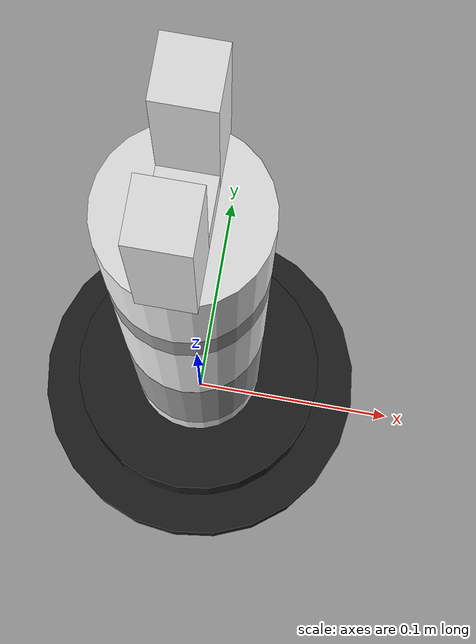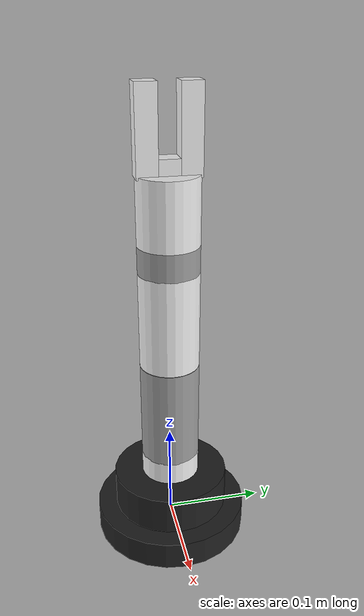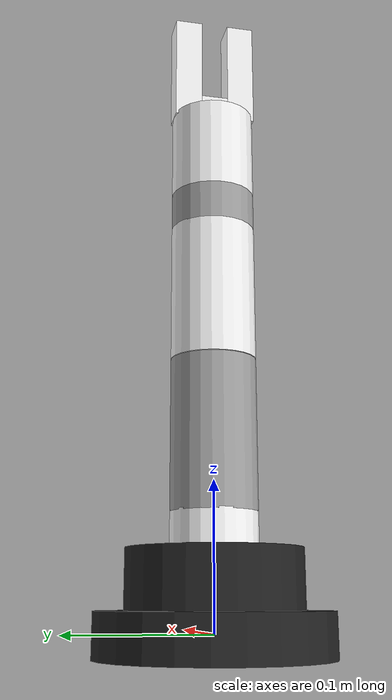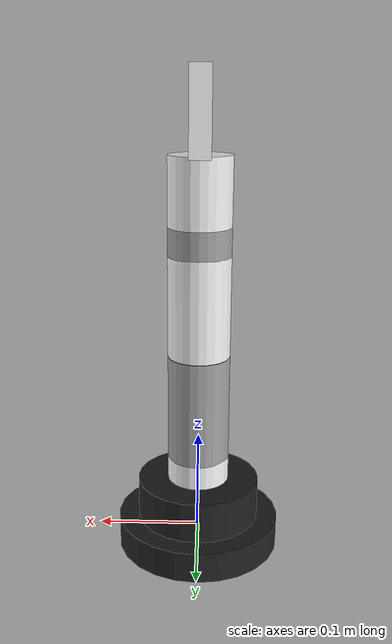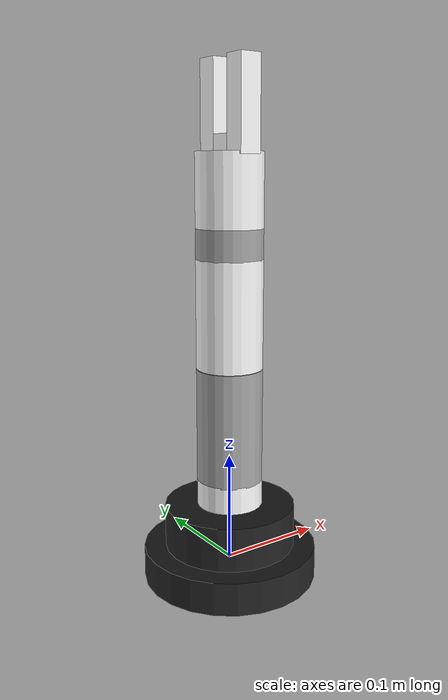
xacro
<?xml version="1.0"?>
<robot name="joyit" xmlns:xacro="http://www.ros.org/wiki/xacro">
    <xacro:include filename="$(find robot_manipulator_5dof)/urdf/links_joints.xacro"/>
    <xacro:include filename="$(find robot_manipulator_5dof)/urdf/robot_parameters.xacro"/>

<!-- *************************************bottom_link**********************************************-->
      <!-- Gripper roll link properties -->
      <property name="gripper_roll_width" value="0.04" />
      <property name="gripper_roll_len" value="0.02" />

      <!-- Left gripper -->
      <property name="left_gripper_len" value="0.02" />
      <property name="left_gripper_width" value="0.02" />
      <property name="left_gripper_height" value="0.08" />

      <!-- Right gripper -->
      <property name="right_gripper_len" value="0.02" />
      <property name="right_gripper_width" value="0.02" />
      <property name="right_gripper_height" value="0.08" />

      <!-- Right gripper -->
      <property name="grasp_frame_len" value="0.02" />
      <property name="grasp_frame_width" value="0.02" />
      <property name="grasp_frame_height" value="0.02" />

    <xacro:macro name="inertial_matrix" params="mass">
        <inertial>
            <mass value="${mass}" />
            <inertia ixx="1.0" ixy="0.0" ixz="0.0" iyy="0.5" iyz="0.0" izz="1.0" />
        </inertial>
    </xacro:macro>

    <!-- *************************************bottom_link********************************************-->
    <link name="dummy_link">
    </link>
    <joint name="dummy_joint" type="fixed">
        <parent link="dummy_link"/>
        <child link="${l000}"/>
    </joint>
    <m_link_cylinder name="${l000}"
        origin_rpy="0 0 0"
        origin_xyz="0 0 0"
        radius="0.08" length="0.03"
        mass= "2000"
        ixx ="0.0" ixy ="0.0" ixz="0.0"
        iyy ="0.0" iyz="0.0"
        izz ="0.0"
        color="black"/>

    <gazebo reference="${l000}">
        <material>Gazebo/Black</material>
    </gazebo>

    <joint name="${l000}__${l00}" type="fixed">
        <axis xyz="0 0 1"/>
        <origin xyz="0 0 0.015" rpy="0 0 0"/>
        <parent link="${l000}"/>
        <child link="${l00}"/>
    </joint>

<!-- *************************************base_link*********************************************-->
    <m_link_cylinder name="${l00}"
        origin_rpy="0 0 0"
        origin_xyz="0 0 0.015"
        length="0.05" radius="0.06"
        mass= "2000"
        ixx ="0.0" ixy ="0.0" ixz="0.0"
        iyy ="0.0" iyz="0.0"
        izz ="0.0"
        color="white"/>

    <gazebo reference="${l00}">
        <material>Gazebo/Black</material>
    </gazebo>

    <m_joint name="${l00}__${l01}"
        type="revolute" axis_xyz="0 0 1"
        limit_e="1000.0" limit_l="0" limit_u="3.14" limit_v="0.5"
        origin_rpy="0 0 0" origin_xyz="0 0 0.028"
        parent="${l00}"
        child="${l01}"/>

<!-- *************************************link_01*********************************************-->
    <m_link_cylinder name="${l01}"
        origin_rpy="0 0 0"
        origin_xyz="0 0 0.02"
        length="0.033" radius="0.03"
        mass= "1"
        ixx ="1.0" ixy ="1.0" ixz="0.0"
        iyy ="0.5" iyz="0.0"
        izz ="1.0"
        color="white"/>

    <gazebo reference="${l01}">
        <material>Gazebo/White</material>
    </gazebo>

  <m_joint name="${l01}__${l02}"
        type="revolute" axis_xyz="0 1 0"
        limit_e="1000.0" limit_l="-3.14" limit_u="3.14" limit_v="0.5"
        origin_rpy="0 0 0" origin_xyz="0 0 0.033"
        parent="${l01}"
        child="${l02}"/>

<!-- *************************************link_02*********************************************-->
    <m_link_cylinder name="${l02}"
        origin_rpy="0 0 0"
        origin_xyz="0 0 0.055"
        length="0.105" radius="0.03"
        mass= "1"
        ixx ="1.0" ixy ="1.0" ixz="0.0"
        iyy ="0.5" iyz="0.0"
        izz ="1.0"
        color="white"/>

    <gazebo reference="${l02}">
        <material>Gazebo/Grey</material>
    </gazebo>

    <m_joint name="${l02}__${l03}"
        type="revolute" axis_xyz="0 1 0"
        limit_e="1000.0" limit_l="0" limit_u="3.14" limit_v="0.5"
        origin_rpy="0 0 0" origin_xyz="0 0 0.105"
        parent="${l02}"
        child="${l03}"/>

<!-- *************************************link_03*********************************************-->
    <m_link_cylinder name="${l03}"
        origin_rpy="0 0 0"
        origin_xyz="0 0 0.052"
        length="0.098" radius="0.03"
        mass= "1"
        ixx ="1.0" ixy ="1.0" ixz="0.0"
        iyy ="0.5" iyz="0.0"
        izz ="1.0"
        color="white"/>

    <gazebo reference="${l03}">
        <material>Gazebo/White</material>
    </gazebo>

    <m_joint name="${l03}__${l04}"
        type="revolute" axis_xyz="0 1 0"
        limit_e="1000.0" limit_l="0" limit_u="3.14" limit_v="0.5"
        origin_rpy="0 0 0" origin_xyz="0 0 0.098"
        parent="${l03}"
        child="${l04}"/>

<!-- *************************************link_04*********************************************-->
    <m_link_cylinder name="${l04}"
        origin_rpy="0 0 0"
        origin_xyz="0 0 0.016"
        length="0.027" radius="0.03"
        mass= "1"
        ixx ="1.0" ixy ="1.0" ixz="0.0"
        iyy ="0.5" iyz="0.0"
        izz ="1.0"
        color="black"/>

    <gazebo reference="${l04}">
        <material>Gazebo/Grey</material>
    </gazebo>

    <m_joint name="${l04}__${l05}"
        type="revolute" axis_xyz="0 0 1"
        limit_e="1000.0" limit_l="0" limit_u="3.14" limit_v="0.5"
        origin_rpy="0 0 0" origin_xyz="0 0 0.027"
        parent="${l04}"
        child="${l05}"/>

<!-- *************************************link_05*********************************************-->
    <m_link_cylinder name="${l05}"
        origin_rpy="0 0 0"
        origin_xyz="0 0 0.035"
        length="0.065" radius="0.03"
        mass= "1"
        ixx ="1.0" ixy ="1.0" ixz="0.0"
        iyy ="0.5" iyz="0.0"
        izz ="1.0"
        color="white"/>

    <gazebo reference="${l05}">
        <material>Gazebo/White</material>
    </gazebo>

    <joint name="finger_joint1" type="prismatic">
        <parent link="${l05}"/>
        <child link="gripper_finger_link1"/>
        <origin xyz="0.0 0 0" />
        <axis xyz="0 1 0" />
        <limit effort="100" lower="0" upper="0.03" velocity="1.0"/>

        <safety_controller k_position="20"
                             k_velocity="20"
                             soft_lower_limit="${-0.15 }"
                             soft_upper_limit="${ 0.0 }"/>
        <dynamics damping="50" friction="1"/>
  </joint>
<!-- *************************************link_05*********************************************-->

<!-- LEFT GRIPPER AFT LINK -->
  <link name="gripper_finger_link1">
     <visual>
      <origin xyz="0.0 -0.02 0.105"/>
      <geometry>
           <box size="${left_gripper_len} ${left_gripper_width} ${left_gripper_height}" />
      </geometry>
      <material name="White" />
    </visual>
    <xacro:inertial_matrix mass="1"/>
  </link>

  <gazebo reference="l_gripper_aft_link">
    <material>Gazebo/White</material>
  </gazebo>

<!-- Joint between Wrist roll and finger 2 -->

  <joint name="finger_joint2" type="prismatic">
    <parent link="${l05}"/>
    <child link="gripper_finger_link2"/>
    <origin xyz="0.0 0.0 0.0" />
    <axis xyz="0 1 0"/>
    <limit effort="1" lower="-0.03" upper="0.0" velocity="1.0"/>

    <dynamics damping="50" friction="1"/>
  </joint>

  <!-- RIGHT GRIPPER AFT LINK -->

  <link name="gripper_finger_link2">
    <visual>
        <origin xyz="0.0 0.02 0.105"/>
        <geometry>
            <box size="${right_gripper_len} ${right_gripper_width} ${right_gripper_height}" />
        </geometry>
        <material name="White"/>
    </visual>
    <xacro:inertial_matrix mass="1"/>
  </link>

  <gazebo reference="r_gripper_aft_link">
    <material>Gazebo/White</material>
  </gazebo>

    <!-- Grasping frame -->
    <link name="grasping_frame">
        <inertial>
            <origin xyz="0 0 0.0" rpy="0 0 0"/>
            <mass value="0.0001"/>
            <cuboid_inertia mass="0.0001" x="0.001" y="0.001" z="0.001"/>
            <inertia  ixx="1.0" ixy="0.0"  ixz="0.0"  iyy="100.0"  iyz="0.0"  izz="1.0" />
        </inertial>
        <visual>
            <origin xyz="0 0 0"/>
            <geometry>
                <box size="${grasp_frame_len} ${grasp_frame_width} ${grasp_frame_height}" />
            </geometry>
            <material name="White"/>
        </visual>
    </link>

    <joint name="grasping_frame_joint" type="fixed">
        <parent link="${l05}"/>
        <child link="grasping_frame"/>
        <origin xyz="0.0 0 0.072" rpy="0 0 0"/>
    </joint>

<!-- *************************************link_01*********************************************-->

<!-- ************************************* ROS control plugin ********************************-->
<!-- To simulate model in order to pasrse the trasnmission tage and assign appropriate hardware interfaces
 and the control manager -->
    <gazebo>
        <plugin name="gazebo_ros_control" filename="libgazebo_ros_control.so">
            <robotNamespace>/joyit</robotNamespace>
            <robotSimType>gazebo_ros_control/DefaultRobotHWSim</robotSimType>
            <legacyModeNS>true</legacyModeNS>
        </plugin>
    </gazebo>

</robot>

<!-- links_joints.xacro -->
<robot xmlns:xacro="http://www.ros.org/wiki/xacro">

<!-- *************************************Constants*********************************** ******-->
<xacro:property name="damping_value" value="50.0"/>
<xacro:property name="friction_value" value="1.0"/>

<!-- *************************************colors********************************************-->
    <material name="blue">
        <color rgba="0 0 0.8 1"/>
    </material>

    <material name="black">
        <color rgba="0 0 0 1"/>
    </material>

    <material name="white">
        <color rgba="1 1 1 1"/>
    </material>

<!-- *************************************functions ********************************************-->
  <xacro:macro name="m_joint" params="name type axis_xyz origin_rpy origin_xyz parent child limit_e limit_l limit_u limit_v">
    <joint name="${name}" type="${type}">
      <axis xyz="${axis_xyz}" />
      <limit effort="${limit_e}" lower="${limit_l}" upper="${limit_u}" velocity="${limit_v}" />
      <origin rpy="${origin_rpy}" xyz="${origin_xyz}" />
      <parent link="${parent}" />
      <child link="${child}" />
      <dynamics damping="${damping_value}" friction="${friction_value}"/>
    </joint>
    <transmission name="trans_${name}">
      <type>transmission_interface/SimpleTransmission</type>
      <joint name="${name}">
        <hardwareInterface>hardware_interface/EffortJointInterface</hardwareInterface>
      </joint>
      <actuator name="motor_${name}">
        <hardwareInterface>hardware_interface/EffortJointInterface</hardwareInterface>
        <mechanicalReduction>1</mechanicalReduction>
      </actuator>
    </transmission>
  </xacro:macro>

 <xacro:macro name="m_link_cylinder" params="name origin_xyz origin_rpy radius length color mass ixx ixy ixz iyy iyz izz">
    <link name="${name}">
      <inertial>
        <mass value="${mass}" />
        <origin rpy="${origin_rpy}" xyz="${origin_xyz}" />
        <inertia ixx="${ixx}" ixy="${ixy}" ixz="${ixz}" iyy="${iyy}" iyz="${iyz}" izz="${izz}" />
      </inertial>
      <collision>
        <origin rpy="${origin_rpy}" xyz="${origin_xyz}" />
        <geometry>
          <cylinder radius="${radius}" length="${length}" />
        </geometry>
      </collision>
      <visual>
        <origin rpy="${origin_rpy}" xyz="${origin_xyz}" />
        <geometry>
          <cylinder radius="${radius}" length="${length}" />
          <material name="color"/>
        </geometry>
      </visual>
    </link>
  </xacro:macro>

  <xacro:macro name="m_link_mesh" params="name origin_xyz origin_rpy meshfile meshscale mass ixx ixy ixz iyy iyz izz">
    <link name="${name}">
      <inertial>
        <mass value="${mass}" />
        <origin rpy="${origin_rpy}" xyz="${origin_xyz}" />
        <inertia ixx="${ixx}" ixy="${ixy}" ixz="${ixz}" iyy="${iyy}" iyz="${iyz}" izz="${izz}" />
      </inertial>
      <collision>
        <origin rpy="${origin_rpy}" xyz="${origin_xyz}" />
        <geometry>
          <mesh filename="${meshfile}" scale="${meshscale}"/>
        </geometry>
      </collision>
      <visual>
        <origin rpy="${origin_rpy}" xyz="${origin_xyz}" />
        <geometry>
          <mesh filename="${meshfile}" scale="${meshscale}"/>
        </geometry>
        <material name="light_black"/>
      </visual>
    </link>
  </xacro:macro>

</robot>

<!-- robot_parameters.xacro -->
<robot name="joyit" xmlns:xacro="http://www.ros.org/wiki/xacro">

    <xacro:property name="l000" value="bottom_link"/>
    <xacro:property name="l00" value="base_link"/>
    <xacro:property name="l01" value="link_01"/>
    <xacro:property name="l02" value="link_02"/>
    <xacro:property name="l03" value="link_03"/>
    <xacro:property name="l04" value="link_04"/>
    <xacro:property name="l05" value="link_05"/>

</robot>
